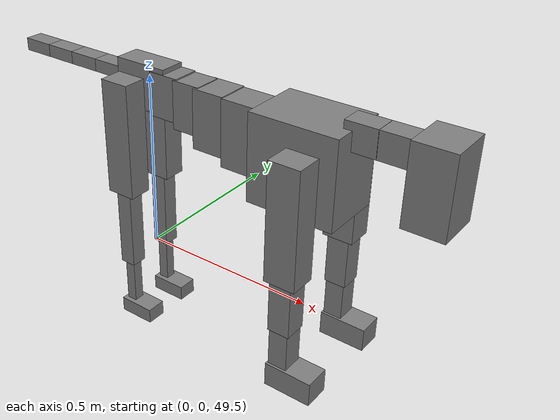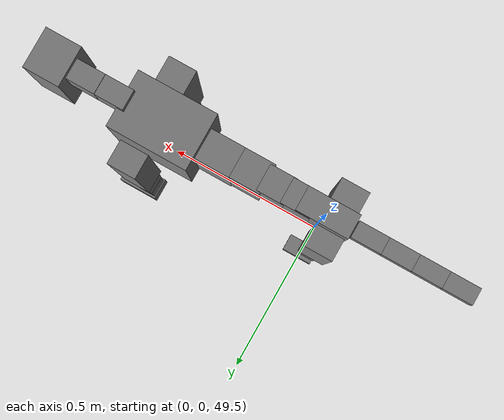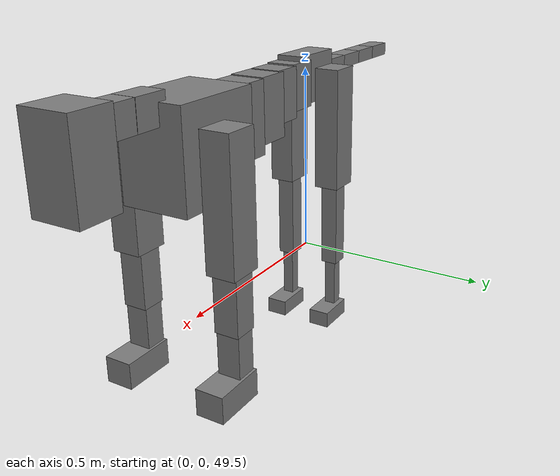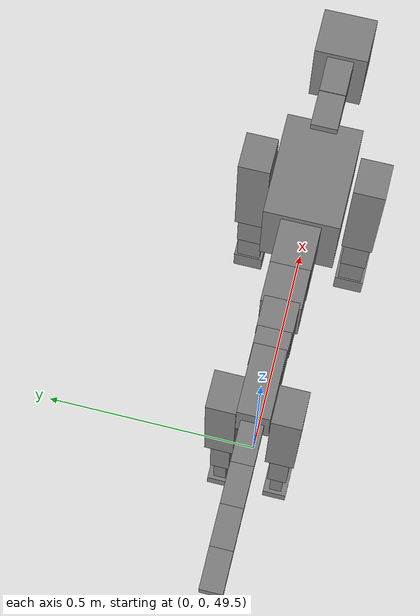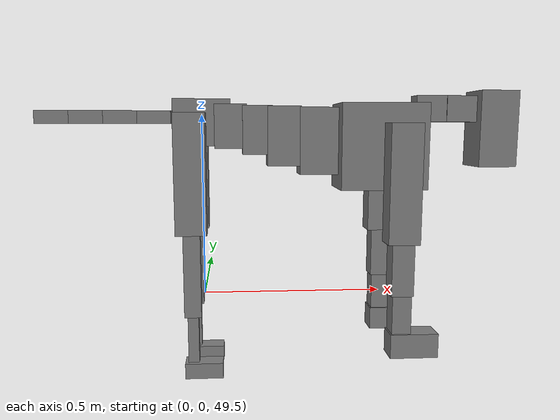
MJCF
<mujoco model="dog">

    <default>
        <joint armature="0.02" stiffness="1" damping="0.2" limited="true"/>
        <geom condim="3" friction="1 0.05 0.05" margin="0.01"/>
        <motor ctrllimited="true" ctrlrange="-1.0 1.0" forcelimited="true" gear="50"/>
    </default>

    <compiler inertiafromgeom="true" angle="radian"/>

    <option timestep="0.016" iterations="50" tolerance="1e-10" solver="Newton" jacobian="dense" cone="pyramidal"/>

    <size nconmax="20000" njmax="60000" nstack="5000000"/>
    <visual>
        <map force="0.1" zfar="30"/>
        <rgba haze="0.15 0.25 0.35 1"/>
        <quality shadowsize="2048"/>
        <global offwidth="800" offheight="800"/>
    </visual>

    <asset>
        <texture type="skybox" builtin="gradient" rgb1="0.3 0.5 0.7" rgb2="0 0 0" width="512" height="512"/>
        <texture name="texplane" type="2d" builtin="checker" rgb1=".2 .3 .4" rgb2=".1 0.15 0.2" width="512" height="512"
                 mark="cross" markrgb=".8 .8 .8"/>
        <texture name="texgeom" type="cube" builtin="flat" mark="cross" width="127" height="1278" rgb1="0.8 0.6 0.4"
                 rgb2="0.8 0.6 0.4" markrgb="1 1 1" random="0.01"/>

        <material name="matplane" reflectance="0.3" texture="texplane" texrepeat="1 1" texuniform="true"/>
        <material name="matgeom" texture="texgeom" texuniform="true" rgba="0.8 0.6 .4 1"/>
    </asset>

    <worldbody>
        <geom name="floor" pos="0 0 0" size="0 0 .25" type="plane" material="matplane" condim="3"/>

        <light directional="false" diffuse=".2 .2 .2" specular="0 0 0" pos="0 0 5" dir="0 0 -1" castshadow="false"/>
        <light mode="targetbodycom" target="torso" directional="false" diffuse=".8 .8 .8" specular="0.3 0.3 0.3"
               pos="0 0 4.0" dir="0 0 -1"/>

        <body name="root" pos="0 0 50">
            <freejoint name="root_1"/>
            <geom type="box" pos="0 0 -0.02" size="0.0774  0.0358  0.063" density="2030"/>

            <body name="spine1" pos="0.054 0 0">
                <joint name="spine1_y" axis="0 1 0" range="0 0.7" limited="true"/>
                <geom type="box" pos="0.02375 0 -0.03" size="0.04375  0.0375  0.05985" density="2030"/>

                <body name="spine2" pos="0.0612 0 0">
                    <joint name="spine2_y" axis="0 1 0" range="-0.15 0.15" limited="true"/>
                    <geom type="box" pos="0.03555  0  -0.04" size="0.04055  0.039  0.06615" density="2030"/>

                    <body name="spine3" pos="0.0730 0 0">
                        <joint name="spine3_y" axis="0 1 0" range="-0.15 0.15" limited="true"/>
                        <geom type="box" pos="0.03555  0  -0.057" size="0.04555  0.0445  0.081" density="2030"/>

                        <body name="spine4" pos="0.0780 0 0">
                            <joint name="spine4_y" axis="0 1 0" range="-0.15 0.15" limited="true"/>
                            <geom type="box" pos="0.05265  0  -0.07" size="0.05265  0.045  0.09135" density="2030"/>

                            <body name="torso" pos="0.1082 0 0">
                                <joint name="torso_y" axis="0 1 0" range="-0.15 0.15" limited="true"/>
                                <geom type="box" pos="0.11925  0  -0.085" size="0.11925  0.085  0.11745"
                                      density="2030"/>

                                <body name="neck1" pos="0.2160  0   0.0180">
                                    <joint name="neck1_y" axis="0 1 0" range="-1.2  -1" limited="true"/>
                                    <geom type="box" pos="0.0423  0  0" size="0.0423  0.03  0.036" density="2325"/>

                                    <body name="neck2" pos="0.0853  0  0">
                                        <joint name="neck2_y" axis="0 1 0" range="0.1  0" limited="true"/>
                                        <geom type="box" pos="0.0423  0  0" size="0.0423  0.03  0.036" density="2325"/>

                                        <body name="head" pos="0.0853  0  0">
                                            <joint name="head_y" axis="0 1 0" range="-0.3  -0.2" limited="true"/>
                                            <geom type="box" pos="0.0531  0  -0.055" size="0.0531  0.06  0.1044"
                                                  density="4030"/>

                                        </body>
                                    </body>
                                </body>

                                <body name="front_shoulder" pos="0.156  0   -0.0480">
                                    <joint name="front_shoulder_y" axis="0 1 0" range="-1 1.5" limited="true"/>
                                    <geom type="box" pos="0 0.13 -0.1324" size="0.0427  0.0365  0.1591" density="1158"/>
                                    <geom type="box" pos="0 -0.13 -0.1324" size="0.0427  0.0365  0.1591"
                                          density="1158"/>

                                    <body name="front_elbow" pos="0  0  -0.2648">
                                        <joint name="front_elbow_y" axis="0 1 0" range="-2 0" limited="true"/>
                                        <geom type="box" pos="0 0.13 -0.0837" size="0.0300  0.0307  0.0837"
                                              density="1081"/>
                                        <geom type="box" pos="0 -0.13 -0.0837" size="0.0300  0.0307  0.0837"
                                              density="1081"/>

                                        <body name="front_wrist" pos="0  0  -0.1675">
                                            <joint name="front_wrist_y" axis="0 1 0" range="-0.2 0" limited="true"/>
                                            <geom type="box" pos="0 0.13 -0.0593" size="0.0260  0.0289  0.0725"
                                                  density="1664"/>
                                            <geom type="box" pos="0 -0.13 -0.0593" size="0.0260  0.0289  0.0725"
                                                  density="1664"/>

                                            <body name="front_finger_end" pos="0  0  -0.1187">
                                                <joint name="front_finger_y" axis="0 1 0" range="-0.4 1"
                                                       limited="true"/>
                                                <geom type="box" pos="0.0356  0.13  -0.0180"
                                                      size="0.0653  0.0356  0.0330" density="1515"/>
                                                <geom type="box" pos="0.0356  -0.13  -0.0180"
                                                      size="0.0653  0.0356  0.0330" density="1515"/>

                                            </body>

                                        </body>
                                    </body>
                                </body>

                            </body>
                        </body>
                    </body>
                </body>
            </body>

            <body name="back_hip" pos="-0.03 0 -0.018">
                <joint name="back_hip_y" axis="0 1 0" range="-1.5 0.3" limited="true"/>
                <geom type="box" pos="0 0.07 -0.1391" size="0.0421  0.0330  0.1619" density="1154"/>
                <geom type="box" pos="0 -0.07 -0.1391" size="0.0421  0.0330  0.1619" density="1154"/>

                <body name="back_knee" pos="0  0  -0.2781">
                    <joint name="back_knee_y" axis="0 1 0" range="0 2.8" limited="true"/>
                    <geom type="box" pos="0 0.07 -0.1175" size="0.0230  0.0227  0.1330" density="1227"/>
                    <geom type="box" pos="0 -0.07 -0.1175" size="0.0230  0.0227  0.1330" density="1227"/>

                    <body name="back_ankle" pos="0  0  -0.2349">
                        <joint name="back_ankle_y" axis="0 1 0" range="-2.2 0" limited="true"/>
                        <geom type="box" pos="0 0.07 -0.0803" size="0.0148  0.0148  0.0915" density="1284"/>
                        <geom type="box" pos="0 -0.07 -0.0803" size="0.0148  0.0148  0.0915" density="1284"/>

                        <body name="back_toe_end" pos="0  0  -0.1605">
                            <joint name="back_toe_y" axis="0 1 0" range="-0.4 1" limited="true"/>
                            <geom type="box" pos="0.0283  0.07  -0.0063" size="0.0519  0.0283  0.0213" density="1515"/>
                            <geom type="box" pos="0.0283  -0.07  -0.0063" size="0.0519  0.0283  0.0213" density="1515"/>

                        </body>
                    </body>
                </body>
            </body>

            <body name="tail1" pos="-0.074 0 -0.006">
                <joint name="tail1_y" axis="0 1 0" range="-0.2 0.2" limited="true"/>
                <geom type="box" pos="-0.0536  0  0" size="0.045  0.025  0.0175" density="1587"/>

                <body name="tail2" pos="-0.09 0 0">
                    <joint name="tail2_y" axis="0 1 0" range="-0.2 0.2" limited="true"/>
                    <geom type="box" pos="-0.0536  0  0" size="0.045  0.025  0.0175" density="1587"/>

                    <body name="tail3" pos="-0.09 0 0">
                        <joint name="tail3_y" axis="0 1 0" range="-0.2 0.2" limited="true"/>
                        <geom type="box" pos="-0.0536  0  0" size="0.045  0.025  0.0175" density="1587"/>

                        <body name="tail4" pos="-0.09 0 0">
                            <joint name="tail4_y" axis="0 1 0" range="-0.2 0.2" limited="true"/>
                            <geom type="box" pos="-0.0536  0  0" size="0.045  0.025  0.0175" density="1587"/>

                        </body>
                    </body>
                </body>
            </body>
        </body>
    </worldbody>

    <actuator>
        <motor joint="spine1_y" forcerange="-150 150     "/>
        <motor joint="spine2_y" forcerange="-150 150     "/>
        <motor joint="spine3_y" forcerange="-150 150     "/>
        <motor joint="spine4_y" forcerange="-150 150     "/>
        <motor joint="torso_y" forcerange="-150 150     "/>
        <motor joint="neck1_y" forcerange="-100 100       "/>
        <motor joint="neck2_y" forcerange="-100 100       "/>
        <motor joint="head_y" forcerange="-150 150       "/>
        <motor joint="front_shoulder_y" forcerange="-147.31 195.79"/>
        <motor joint="front_elbow_y" forcerange="-197.37 125.56"/>
        <motor joint="front_wrist_y" forcerange="-88.82 142.27"/>
        <motor joint="front_finger_y" forcerange="-60.53 89.39"/>
        <motor joint="back_hip_y" forcerange="-251.01 389.00"/>
        <motor joint="back_knee_y" forcerange="-328.25 201.41"/>
        <motor joint="back_angle_y" forcerange="-66.72 70.60"/>
        <motor joint="back_toe_y" forcerange="-126.19 20.48"/>
        <motor joint="tail1_y" forcerange="-50 50     "/>
        <motor joint="tail2_y" forcerange="-50 50     "/>
        <motor joint="tail3_y" forcerange="-50 50     "/>
        <motor joint="tail4_y" forcerange="-50 50     "/>
    </actuator>
</mujoco>
